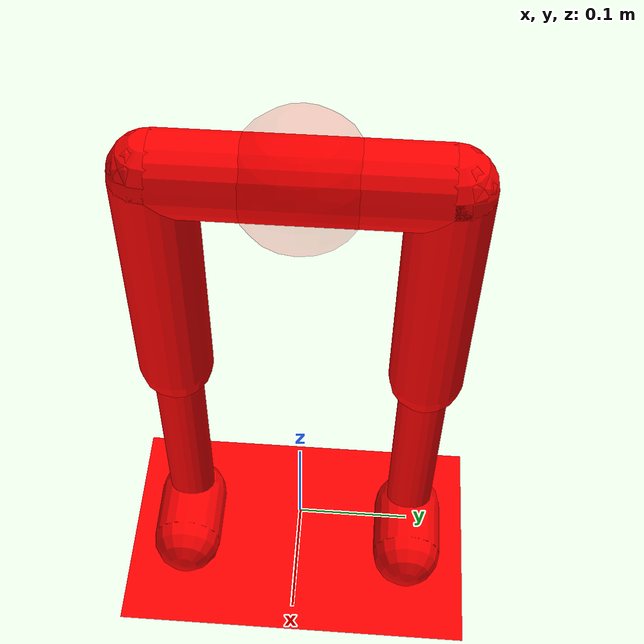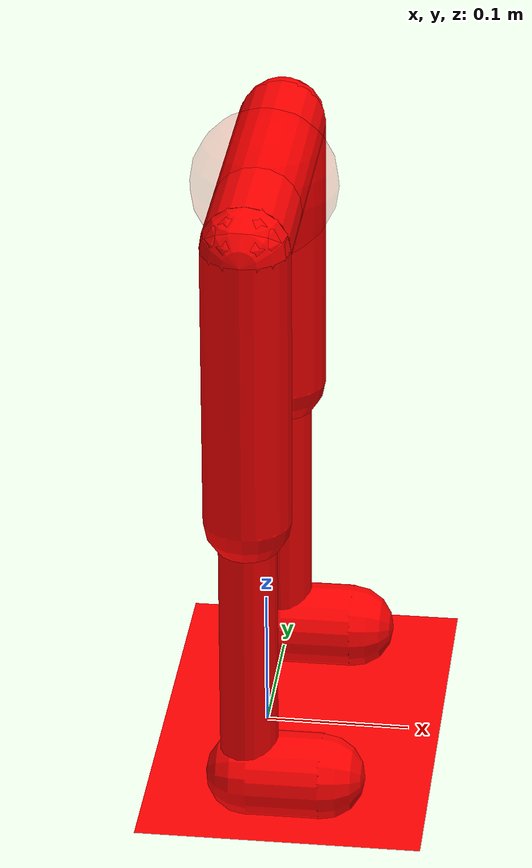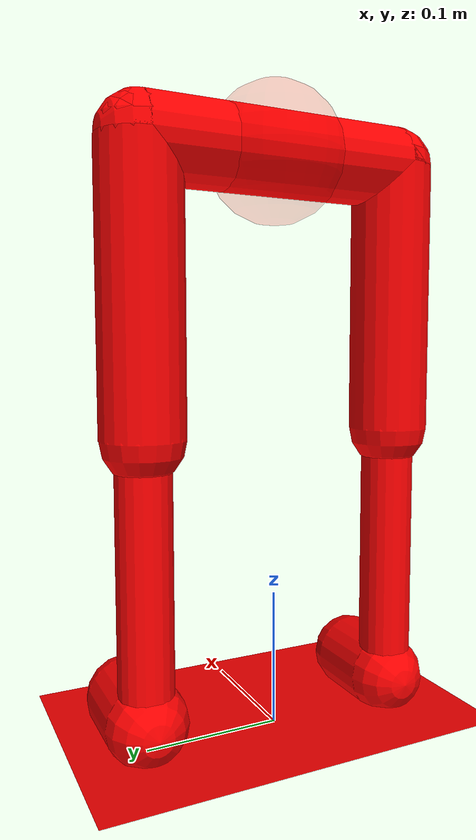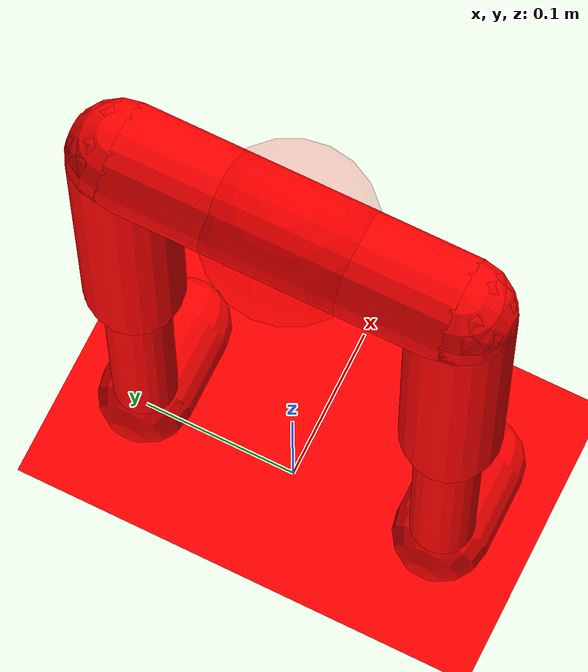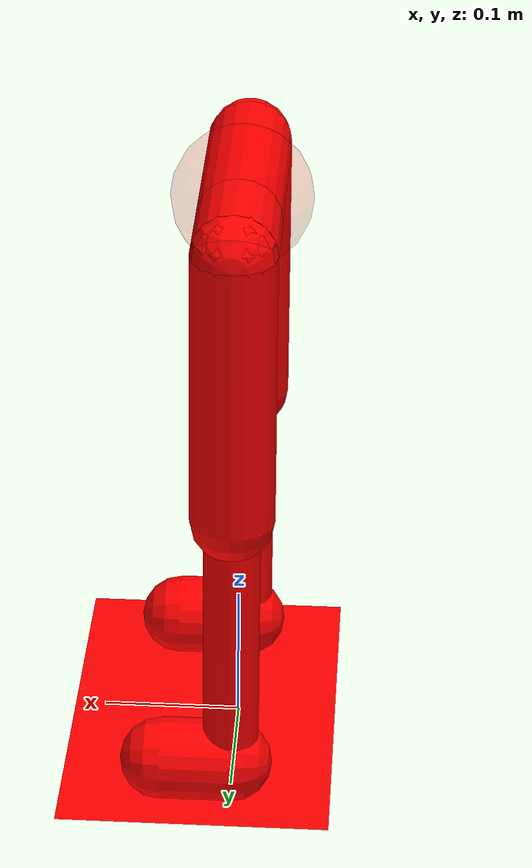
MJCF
<mujoco model="walker">
  <compiler angle="degree" coordinate="local" inertiafromgeom="true"/>
  <size njmax="3000" nconmax="1000"/>
  <default>
    <joint armature="1" damping="20" limited="true"/>
    <geom condim="3" density="50.0" friction="0.75 0.01 0.01" rgba="1 0 0  1" contype="0" conaffinity="0"/>
    <site size="0.05" type="sphere" rgba="0 0 1 0"/>
  </default>
  <option timestep="0.02"/>
  <worldbody>
    <geom name="floor" size="5 5 0.1" type="plane" conaffinity="1" condim="3"/>
    <body name="robot" pos="0 0 0.42">
      <site name="robot" rgba="1 0 0 .1"/>
      <camera name="vision" pos=".125 0 .2" xyaxes="0 -1 0 .4 0 1" fovy="100"/>
      <joint armature="0" axis="1 0 0" damping="10" limited="false" name="robot_x" pos="0 0 0" stiffness="0" type="slide"/>
      <joint armature="0" axis="0 0 1" damping="1" limited="false" name="robot_z" pos="0 0 0" stiffness="0.1" type="hinge"/>
      <joint armature="0" axis="0 1 0" damping="10" limited="false" name="robot_y" pos="0 0 0" stiffness="0" type="slide"/>

      <geom   fromto="0 0.1 0 0 -0.1 0" name="robot_geom" size="0.03" type="capsule"/>
      <body name="right_thigh" pos="0 0.1 0">
        <joint armature="0.01" axis="1 0 0" damping="5" name="right_hip_x" pos="0 0 0" range="-25 5" stiffness="10" type="hinge"/>
        <joint armature="0.01" axis="0 0 1" damping="5" name="right_hip_z" pos="0 0 0" range="-30 35" stiffness="10" type="hinge"/>
        <joint armature="0.01" axis="0 1 0" damping="5" name="right_hip_y" pos="0 0 0" range="-100 10" stiffness="10" type="hinge"/>
        <geom   fromto="0 0 0 0 0 -0.2" name="right_thigh_geom" size="0.03" type="capsule"/>
        <body name="right_leg" pos="0 0 -0.3">
          <joint axis="0 -1 0" name="right_leg_joint" pos="0 0 0.1" range="-100 0" type="hinge"/>
          <geom   fromto="0 0 0.1 0 0 -0.1" name="right_leg_geom" size="0.02" type="capsule"/>
          <body name="right_foot" pos="0.0 0.0 0.0">
            <joint axis="0 -1 0" name="right_foot_joint" pos="0.0 0.0 -0.1" range="-45 20" type="hinge"/>
            <geom friction="2.0" fromto="0.0 0.0 -0.1 0.05 0.0 -0.1" name="right_foot_geom" size="0.03" type="capsule"/>
            <geom type="sphere" pos="0.05 0.0 -0.1" size="0.02" contype="1" conaffinity="0" />
            <site name="right_foot" pos="0.05 0 -0.1"/>
          </body>
        </body>
      </body>

      <body name="left_thigh" pos="0 -0.1 0">
        <joint armature="0.01" axis="-1 0 0" damping="5" name="left_hip_x" pos="0 0 0" range="-25 5" stiffness="10" type="hinge"/>
        <joint armature="0.01" axis="0 0 -1" damping="5" name="left_hip_z" pos="0 0 0" range="-30 35" stiffness="10" type="hinge"/>
        <joint armature="0.01" axis="0 1 0" damping="5" name="left_hip_y" pos="0 0 0" range="-100 10" stiffness="10" type="hinge"/>
        <geom   fromto="0 0 0 0 0 -0.2" name="left_thigh_geom" size="0.03" type="capsule"/>
        <body name="left_leg" pos="0 0 -0.3">
          <joint axis="0 -1 0" name="left_leg_joint" pos="0 0 0.1" range="-100 0" type="hinge"/>
          <geom   fromto="0 0 0.1 0 0 -0.1" name="left_leg_geom" size="0.02" type="capsule"/>
          <body name="left_foot" pos="0.0 0.0 0.0">
            <joint axis="0 -1 0" name="left_foot_joint" pos="0.0 0.0 -0.1" range="-45 20" type="hinge"/>
            <geom friction="2.0" fromto="0.0 0.0 -0.1 0.05 0.0 -0.1" name="left_foot_geom" size="0.03" type="capsule"/>
            <geom type="sphere" pos="0.05 0.0 -0.1" size="0.02" contype="1" conaffinity="0" />
            <site name="left_foot" pos="0.05 0 -0.1"/>
          </body>
        </body>
      </body>
    </body>
  </worldbody>
  <sensor>
    <touch site="right_foot" name="touch_right_foot"/>
    <touch site="left_foot" name="touch_left_foot"/>

    <jointpos joint="right_hip_x" name="jointpos_right_hip_x"/>
    <jointpos joint="right_hip_z" name="jointpos_right_hip_z"/>
    <jointpos joint="right_hip_y" name="jointpos_right_hip_y"/>
    <jointpos joint="right_leg_joint" name="jointpos_right_leg"/>
    <jointpos joint="right_foot_joint" name="jointpos_right_foot"/>

    <jointpos joint="left_hip_x" name="jointpos_left_hip_x"/>
    <jointpos joint="left_hip_z" name="jointpos_left_hip_z"/>
    <jointpos joint="left_hip_y" name="jointpos_left_hip_y"/>
    <jointpos joint="left_leg_joint" name="jointpos_left_leg"/>
    <jointpos joint="left_foot_joint" name="jointpos_left_foot"/>

    <jointvel joint="right_hip_x" name="jointvel_right_hip_x"/>
    <jointvel joint="right_hip_z" name="jointvel_right_hip_z"/>
    <jointvel joint="right_hip_y" name="jointvel_right_hip_y"/>
    <jointvel joint="right_leg_joint" name="jointvel_right_leg"/>
    <jointvel joint="right_foot_joint" name="jointvel_right_foot"/>

    <jointvel joint="left_hip_x" name="jointvel_left_hip_x"/>
    <jointvel joint="left_hip_z" name="jointvel_left_hip_z"/>
    <jointvel joint="left_hip_y" name="jointvel_left_hip_y"/>
    <jointvel joint="left_leg_joint" name="jointvel_left_leg"/>
    <jointvel joint="left_foot_joint" name="jointvel_left_foot"/>

    <!-- Used for observation -->
    <accelerometer site="robot" name="accelerometer"/>
    <velocimeter site="robot" name="velocimeter"/>
    <gyro site="robot" name="gyro"/>
    <magnetometer site="robot" name="magnetometer"/>

    <!-- Used for intrinsic constraints -->
    <subtreecom body="robot" name="subtreecom"/>
    <subtreelinvel body="robot" name="subtreelinvel"/>
    <subtreeangmom body="robot" name="subtreeangmom"/>
  </sensor>
  <actuator>
    <motor ctrllimited="true" ctrlrange="-1.0 1.0" gear="10" joint="right_hip_x" name="right_hip_x"/>
    <motor ctrllimited="true" ctrlrange="-1.0 1.0" gear="10" joint="right_hip_z" name="right_hip_z"/>
    <motor ctrllimited="true" ctrlrange="-1.0 1.0" gear="30" joint="right_hip_y" name="right_hip_y"/>
    <motor ctrllimited="true" ctrlrange="-1.0 1.0" gear="30" joint="right_leg_joint"/>
    <motor ctrllimited="true" ctrlrange="-1.0 1.0" gear="40" joint="right_foot_joint"/>

    <motor ctrllimited="true" ctrlrange="-1.0 1.0" gear="10" joint="left_hip_x" name="left_hip_x"/>
    <motor ctrllimited="true" ctrlrange="-1.0 1.0" gear="10" joint="left_hip_z" name="left_hip_z"/>
    <motor ctrllimited="true" ctrlrange="-1.0 1.0" gear="30" joint="left_hip_y" name="left_hip_y"/>
    <motor ctrllimited="true" ctrlrange="-1.0 1.0" gear="30" joint="left_leg_joint"/>
    <motor ctrllimited="true" ctrlrange="-1.0 1.0" gear="40" joint="left_foot_joint"/>

  </actuator>
</mujoco>
